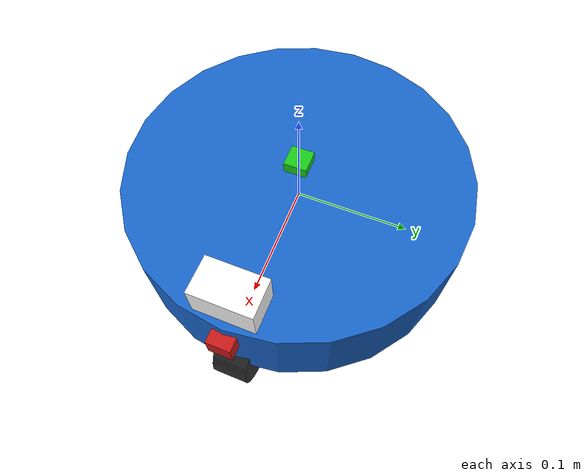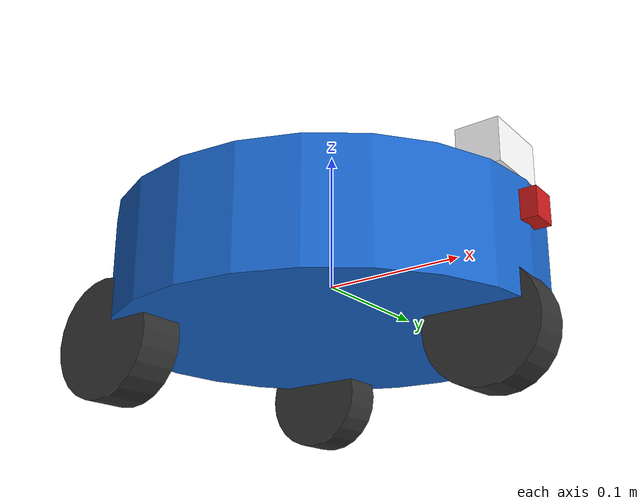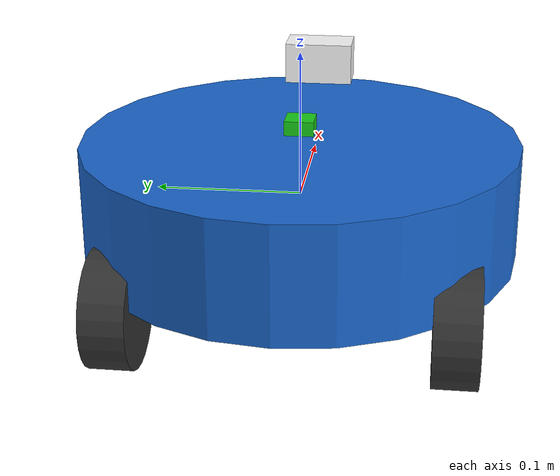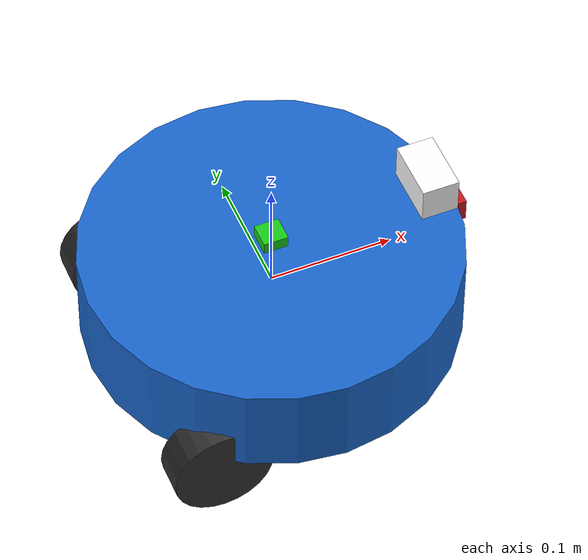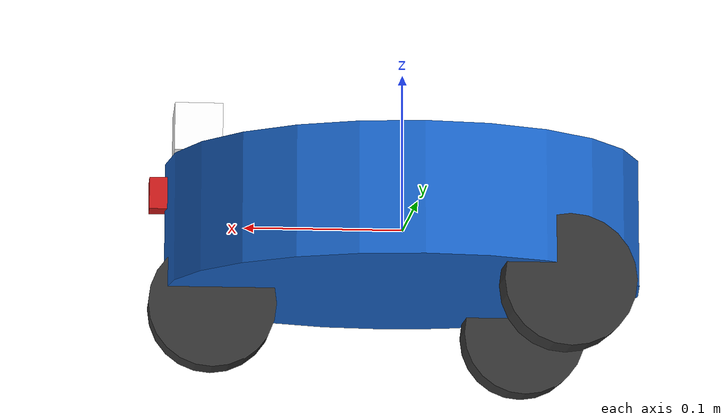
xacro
<?xml version="1.0"?>
<robot name="three_wheel_robot" xmlns:xacro="http://www.ros.org/wiki/xacro">

  <!-- ========== PROPERTIES ========== -->
  <xacro:property name="body_radius" value="0.15"/>
  <xacro:property name="body_height" value="0.08"/>
  <xacro:property name="wheel_radius" value="0.04"/>
  <xacro:property name="wheel_width"  value="0.03"/>

  <!-- ========== MATERIALS ========== -->
  <material name="dark_grey"><color rgba="0.2 0.2 0.2 1"/></material>
  <material name="blue"><color rgba="0.1 0.4 0.8 1"/></material>
  <material name="red"><color rgba="0.8 0.1 0.1 1"/></material>
  <material name="green"><color rgba="0.1 0.8 0.1 1"/></material>
  <material name="white"><color rgba="1 1 1 1"/></material>

  <!-- ========== BASE LINK ========== -->
  <link name="base_link">
    <visual>
      <geometry><cylinder radius="${body_radius}" length="${body_height}"/></geometry>
      <material name="blue"/>
    </visual>
    <collision>
      <geometry><cylinder radius="${body_radius}" length="${body_height}"/></geometry>
    </collision>
    <inertial>
      <mass value="1.5"/>
      <inertia ixx="0.012" ixy="0" ixz="0" iyy="0.012" iyz="0" izz="0.022"/>
    </inertial>
  </link>

  <!-- ========== WHEEL MACRO ========== -->
  <xacro:macro name="wheel" params="name x y z angle">
    <link name="${name}_link">
      <visual>
        <geometry><cylinder radius="${wheel_radius}" length="${wheel_width}"/></geometry>
        <material name="dark_grey"/>
      </visual>
      <collision>
        <geometry><cylinder radius="${wheel_radius}" length="${wheel_width}"/></geometry>
      </collision>
      <inertial>
        <mass value="0.1"/>
        <inertia ixx="0.0001" ixy="0" ixz="0" iyy="0.0001" iyz="0" izz="0.0002"/>
      </inertial>
    </link>
    <joint name="${name}_joint" type="continuous">
      <parent link="base_link"/>
      <child  link="${name}_link"/>
      <origin xyz="${x} ${y} ${z}" rpy="${angle} 0 0"/>
      <axis xyz="0 0 1"/>
    </joint>
  </xacro:macro>

  <!-- Front wheel -->
  <xacro:wheel name="front_wheel" x="0.12"  y="0"     z="-0.05" angle="1.5708"/>
  <!-- Rear left wheel -->
  <xacro:wheel name="rear_left"   x="-0.09" y="0.11"  z="-0.05" angle="1.5708"/>
  <!-- Rear right wheel -->
  <xacro:wheel name="rear_right"  x="-0.09" y="-0.11" z="-0.05" angle="1.5708"/>

  <!-- ========== PROXIMITY SENSOR ========== -->
  <link name="proximity_sensor_link">
    <visual>
      <geometry><box size="0.02 0.02 0.02"/></geometry>
      <material name="red"/>
    </visual>
  </link>
  <joint name="proximity_joint" type="fixed">
    <parent link="base_link"/>
    <child  link="proximity_sensor_link"/>
    <origin xyz="0.15 0 0.02" rpy="0 0 0"/>
  </joint>

  <!-- ========== GYROSCOPE (IMU) ========== -->
  <link name="imu_link">
    <visual>
      <geometry><box size="0.02 0.02 0.01"/></geometry>
      <material name="green"/>
    </visual>
  </link>
  <joint name="imu_joint" type="fixed">
    <parent link="base_link"/>
    <child  link="imu_link"/>
    <origin xyz="0 0 0.05" rpy="0 0 0"/>
  </joint>

  <!-- ========== RGB CAMERA ========== -->
  <link name="camera_link">
    <visual>
      <geometry><box size="0.03 0.05 0.03"/></geometry>
      <material name="white"/>
    </visual>
  </link>
  <joint name="camera_joint" type="fixed">
    <parent link="base_link"/>
    <child  link="camera_link"/>
    <origin xyz="0.13 0 0.06" rpy="0 0 0"/>
  </joint>

  <!-- ========== GAZEBO PLUGINS ========== -->

  <!-- Differential drive -->
  <gazebo>
    <plugin name="diff_drive" filename="libgazebo_ros_diff_drive.so">
      <left_joint>rear_left_joint</left_joint>
      <right_joint>rear_right_joint</right_joint>
      <wheel_separation>0.22</wheel_separation>
      <wheel_diameter>0.08</wheel_diameter>
      <max_wheel_torque>20</max_wheel_torque>
      <publish_odom>true</publish_odom>
      <publish_odom_tf>true</publish_odom_tf>
      <odometry_frame>odom</odometry_frame>
      <robot_base_frame>base_link</robot_base_frame>
    </plugin>
  </gazebo>

  <!-- Proximity / Laser sensor -->
  <gazebo reference="proximity_sensor_link">
    <sensor name="proximity_sensor" type="ray">
      <always_on>true</always_on>
      <update_rate>10</update_rate>
      <ray>
        <scan><horizontal><samples>1</samples><min_angle>0</min_angle><max_angle>0</max_angle></horizontal></scan>
        <range><min>0.05</min><max>3.0</max></range>
      </ray>
      <plugin name="proximity_plugin" filename="libgazebo_ros_ray_sensor.so">
        <ros><remapping>~/out:=proximity</remapping></ros>
        <output_type>sensor_msgs/Range</output_type>
      </plugin>
    </sensor>
  </gazebo>

  <!-- IMU / Gyroscope -->
  <gazebo reference="imu_link">
    <sensor name="imu_sensor" type="imu">
      <always_on>true</always_on>
      <update_rate>100</update_rate>
      <plugin name="imu_plugin" filename="libgazebo_ros_imu_sensor.so">
        <ros><remapping>~/out:=imu</remapping></ros>
      </plugin>
    </sensor>
  </gazebo>

  <!-- RGB Camera -->
  <gazebo reference="camera_link">
    <sensor name="rgb_camera" type="camera">
      <always_on>true</always_on>
      <update_rate>30</update_rate>
      <camera>
        <horizontal_fov>1.047</horizontal_fov>
        <image><width>640</width><height>480</height><format>R8G8B8</format></image>
        <clip><near>0.1</near><far>100</far></clip>
      </camera>
      <plugin name="camera_plugin" filename="libgazebo_ros_camera.so">
        <ros><remapping>~/image_raw:=camera/image_raw</remapping></ros>
      </plugin>
    </sensor>
  </gazebo>

</robot>
